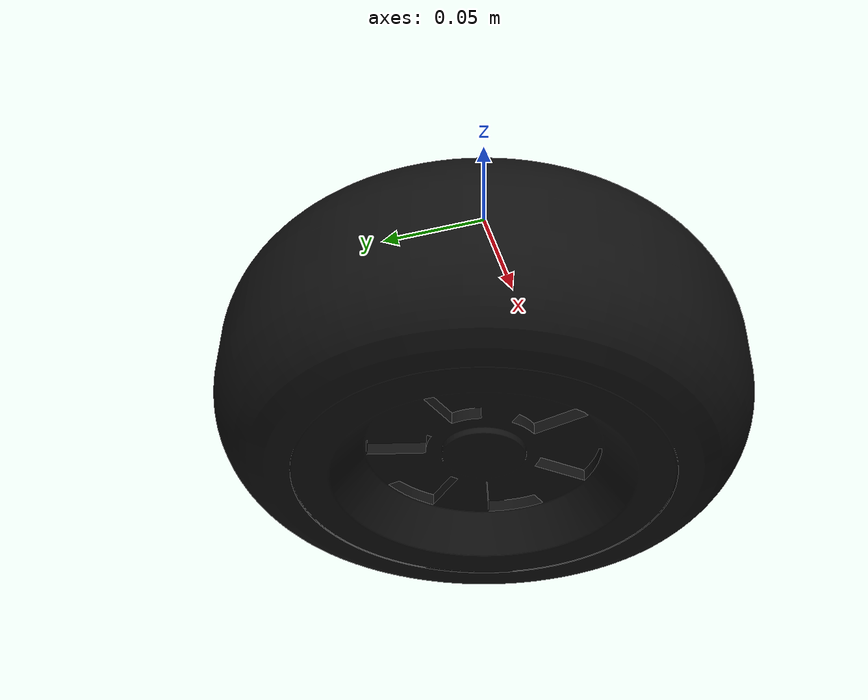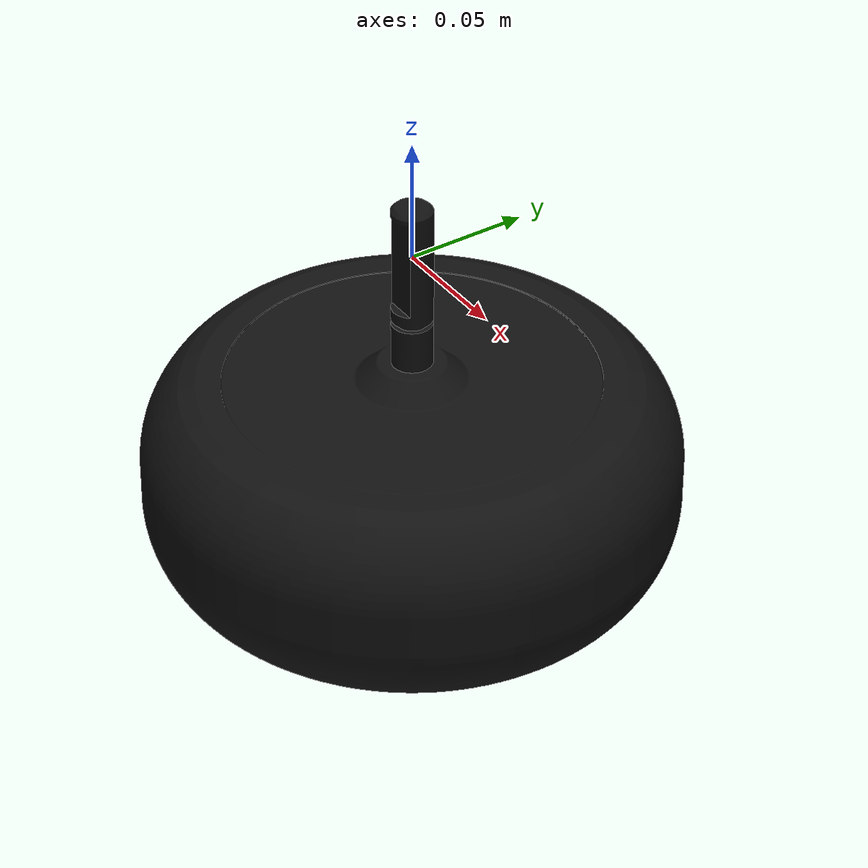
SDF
<?xml version='1.0'?>
<sdf version='1.5'>
  <model name="wheel_hhj30nt36v">
    <static>false</static>
    <pose>0 0 0 0 0 0</pose>

    <!-- The axis of this wheel. -->
    <link name="axis">
      <pose>0 0 -0.1 0 0 0</pose>

      <inertial>
        <pose>0 0 0.0464 0 0 0</pose>
        <mass>0.3</mass>
        <inertia>
          <ixx>0.00055056</ixx>
          <iyy>0.00055086</iyy>
          <izz>0.00001032</izz>
          <ixy>0.0</ixy>
          <ixz>0.0</ixz>
          <iyz>-0.00000345</iyz>
        </inertia>
      </inertial>

      <collision name="collision">
        <pose>0 0 0.0364 0 0 0</pose>
        <geometry>
          <cylinder>
            <radius>0.0084</radius>
            <length>0.1528</length>
          </cylinder>
        </geometry>
      </collision>

      <visual name="visual">
        <pose>0 0 0 0 0 0</pose>
        <geometry>
          <mesh>
            <uri>model://wheel_hhj30nt36v/meshes/axis.dae</uri>
          </mesh>
        </geometry>
      </visual>
    </link>

    <!-- The rotating part of this wheel. -->
    <link name="wheel">
      <pose>0 0 -0.1 0 0 0</pose>

      <inertial>
        <pose>-0.000000 -0.000000 0.002033 0 0 0</pose>
        <mass>3.7</mass>
        <inertia>
          <ixx>0.012247851</ixx>
          <iyy>0.012247851</iyy>
          <izz>0.020656847</izz>
          <ixy>0.0</ixy>
          <ixz>0.0</ixz>
          <iyz>0.0</iyz>
        </inertia>
      </inertial>

      <collision name="collision">
        <pose>0 0 0 0 0 0</pose>
        <geometry>
          <cylinder>
            <radius>0.11</radius>
            <length>0.04</length>
          </cylinder>
        </geometry>
        <max_contacts>10</max_contacts>
        <surface>
          <friction>
            <torsional>
              <coefficient>0.5</coefficient>
              <surface_radius>0.11</surface_radius>
              <use_patch_radius>false</use_patch_radius>
              <ode>
                <slip>0.02</slip>
              </ode>
            </torsional>
            <ode>
              <mu>0.45</mu>
              <mu2>0.45</mu2>
              <fdir1>1 1 1</fdir1> <!-- TODO: not clear what happen if two axes are used. -->
              <slip1>0.02</slip1>
              <slip2>0.02</slip2>
            </ode>
          </friction>
          <contact>
            <ode>
              <min_depth>0.005</min_depth>
            </ode>
          </contact>
        </surface>
      </collision>

      <collision name="side">
        <pose>0 0 0 0 0 0</pose>
        <geometry>
          <mesh>
            <uri>model://wheel_hhj30nt36v/meshes/wheel-lod-1.dae</uri>
          </mesh>
        </geometry>
        <max_contacts>10</max_contacts>
        <surface>
          <friction>
            <torsional>
              <coefficient>0.5</coefficient>
              <surface_radius>0.11</surface_radius>
              <use_patch_radius>false</use_patch_radius>
              <ode>
                <slip>0.02</slip>
              </ode>
            </torsional>
            <ode>
              <mu>0.5</mu>
              <mu2>0.5</mu2>
              <fdir1>1 1 1</fdir1> <!-- TODO: not clear what happen if two axes are used. -->
              <slip1>0.02</slip1>
              <slip2>0.02</slip2>
            </ode>
          </friction>
          <contact>
            <ode>
              <min_depth>0.01</min_depth>
            </ode>
          </contact>
        </surface>
      </collision>

      <visual name="visual">
        <pose>0 0 0 0 0 0</pose>
        <geometry>
          <mesh>
            <uri>model://wheel_hhj30nt36v/meshes/wheel.dae</uri>
          </mesh>
        </geometry>
      </visual>
    </link>

    <!-- The motor joint of this wheel. -->
    <joint type="revolute" name="motor">
      <pose>0 0 0 0 0 0</pose>
      <child>wheel</child>
      <parent>axis</parent>
      <axis>
        <use_parent_model_frame>true</use_parent_model_frame>
        <xyz>0 0 1</xyz>
      </axis>
    </joint>

  </model>
</sdf>
